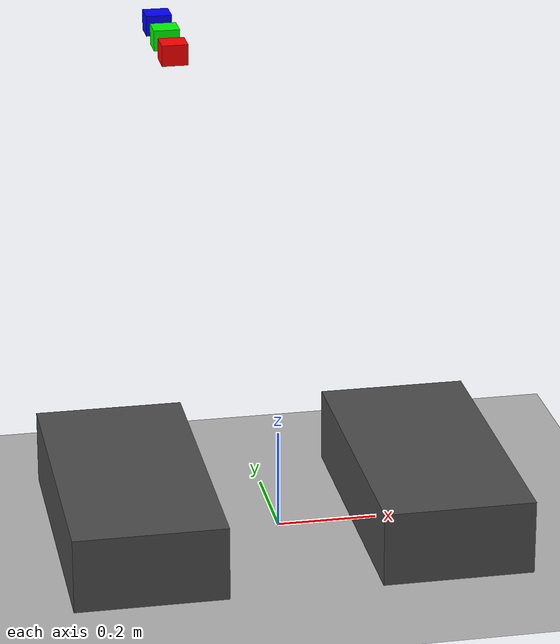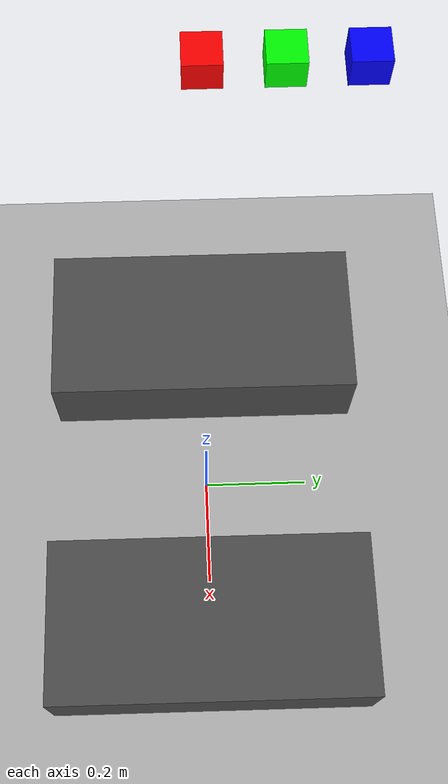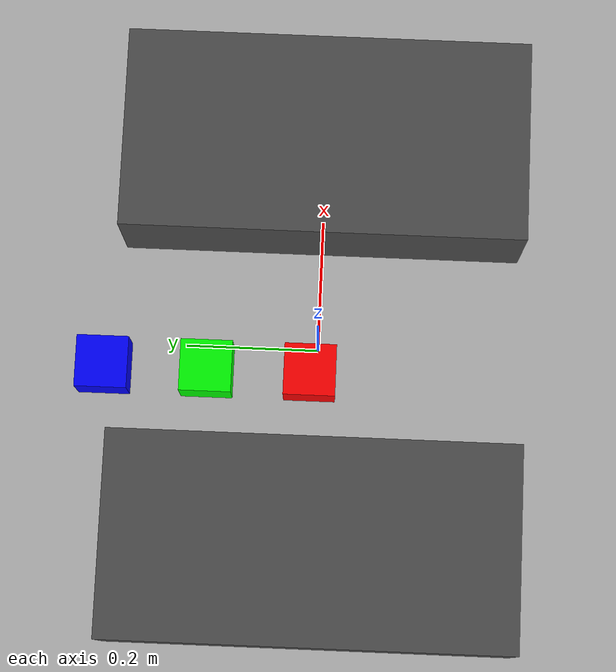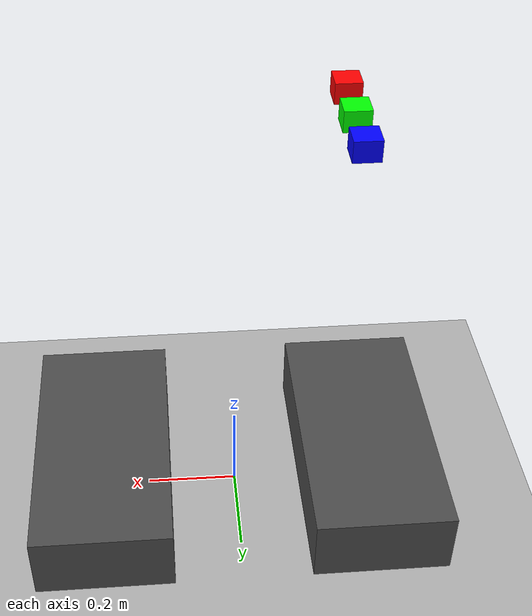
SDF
<sdf version='1.9'>
  <world name='empty_world'>
    <gravity>0 0 -9.8</gravity>
    <magnetic_field>6e-06 2.3e-05 -4.2e-05</magnetic_field>
    <atmosphere type='adiabatic'/>
    <physics type='ode'>
      <max_step_size>0.001</max_step_size>
      <real_time_factor>1</real_time_factor>
      <real_time_update_rate>1000</real_time_update_rate>
    </physics>
    <scene>
      <ambient>0.4 0.4 0.4 1</ambient>
      <background>0.7 0.7 0.7 1</background>
      <shadows>true</shadows>
    </scene>

    <!-- ===== الأرض ===== -->
    <model name='ground_plane'>
      <static>true</static>
      <link name='link'>
        <collision name='collision'>
          <geometry>
            <plane>
              <normal>0 0 1</normal>
              <size>1 1</size>
            </plane>
          </geometry>
          <surface>
            <friction>
              <ode/>
            </friction>
            <bounce/>
            <contact/>
          </surface>
        </collision>
        <visual name='visual'>
          <geometry>
            <plane>
              <normal>0 0 1</normal>
              <size>100 100</size>
            </plane>
          </geometry>
          <material>
                 <ambient>0.7 0.7 0.7 1</ambient>
                 <diffuse>0.7 0.7 0.7 1</diffuse>
          </material>
        </visual>
        <pose>0 0 0 0 -0 0</pose>
        <inertial>
          <pose>0 0 0 0 -0 0</pose>
          <mass>1</mass>
          <inertia>
            <ixx>1</ixx>
            <ixy>0</ixy>
            <ixz>0</ixz>
            <iyy>1</iyy>
            <iyz>0</iyz>
            <izz>1</izz>
          </inertia>
        </inertial>
        <enable_wind>false</enable_wind>
      </link>
      <pose>0 0 0 0 -0 0</pose>
      <self_collide>false</self_collide>
    </model>

    <!-- ===== الإضاءة ===== -->
    <light name='sun' type='directional'>
  <pose>0 0 10 0 0 0</pose>

  <!-- ❌ كان true -->
  <cast_shadows>false</cast_shadows>  <!-- 🔥 أهم سطر -->

  <direction>-0.3 0.1 -0.9</direction>

  <!-- softer light -->
  <diffuse>0.6 0.6 0.6 1</diffuse>
  <specular>0.1 0.1 0.1 1</specular>

  <attenuation>
    <range>1000</range>
    <constant>0.9</constant>
    <linear>0.01</linear>
    <quadratic>0.001</quadratic>
  </attenuation>
</light>

    <!-- ================= SUPPORT LEFT ================= -->
<model name="support_left">
  <static>true</static>

  <link name="link">

    <!-- نفس أبعاد الـ URDF -->
    <pose>0.3 0.0 0.075 0 0 1.57</pose>

    <!-- Inertia -->
    <inertial>
      <mass>5</mass>
      <inertia>
        <ixx>0.05</ixx>
        <iyy>0.05</iyy>
        <izz>0.05</izz>
        <ixy>0</ixy>
        <ixz>0</ixz>
        <iyz>0</iyz>
      </inertia>
    </inertial>

    <!-- Collision -->
    <collision name="collision">
      <geometry>
        <box>
          <size>0.6 0.3 0.15</size>
        </box>
      </geometry>
    </collision>

    <!-- Visual -->
    <visual name="visual">
      <geometry>
        <box>
          <size>0.6 0.3 0.15</size>
        </box>
      </geometry>
      <material>
        <ambient>0.3 0.3 0.3 1</ambient>
        <diffuse>0.3 0.3 0.3 1</diffuse>
      </material>
    </visual>

  </link>
</model>

<!-- ================= SUPPORT RIGHT ================= -->
<model name="support_right">
  <static>true</static>

  <link name="link">

    <!-- نفس الارتفاع + mirrored -->
    <pose>-0.3 0.0 0.075 0 0 1.57</pose>

    <inertial>
      <mass>5</mass>
      <inertia>
        <ixx>0.05</ixx>
        <iyy>0.05</iyy>
        <izz>0.05</izz>
        <ixy>0</ixy>
        <ixz>0</ixz>
        <iyz>0</iyz>
      </inertia>
    </inertial>

    <collision name="collision">
      <geometry>
        <box>
          <size>0.6 0.3 0.15</size>
        </box>
      </geometry>
    </collision>

    <visual name="visual">
      <geometry>
        <box>
          <size>0.6 0.3 0.15</size>
        </box>
      </geometry>
      <material>
        <ambient>0.3 0.3 0.3 1</ambient>
        <diffuse>0.3 0.3 0.3 1</diffuse>
      </material>
    </visual>

  </link>
</model>

    <!-- ================= RED BOX ================= -->
    <model name="red_box">
      <pose>-0.2 0 1 0 0 0</pose>
      <link name="link">
        <inertial>
          <mass>1.0</mass>
          <inertia>
            <ixx>0.001</ixx>
            <iyy>0.001</iyy>
            <izz>0.001</izz>
          </inertia>
        </inertial>

        <collision name="collision">
          <geometry>
            <box>
              <size>0.05 0.05 0.04</size>
            </box>
          </geometry>
        </collision>

        <visual name="visual">
          <geometry>
            <box>
              <size>0.05 0.05 0.04</size>
            </box>
          </geometry>
          <material>
            <ambient>1 0 0 1</ambient>
            <diffuse>1 0 0 1</diffuse>
          </material>
        </visual>
      </link>
    </model>

    <!-- ================= GREEN BOX ================= -->
    <model name="green_box">
      <pose>-0.2 0.1 1 0 0 0</pose>
      <link name="link">
        <collision name="collision">
          <geometry>
            <box>
              <size>0.05 0.05 0.04</size>
            </box>
          </geometry>
        </collision>

        <visual name="visual">
          <geometry>
            <box>
              <size>0.05 0.05 0.04</size>
            </box>
          </geometry>
          <material>
            <ambient>0 1 0 1</ambient>
            <diffuse>0 1 0 1</diffuse>
          </material>
        </visual>
      </link>
    </model>

    <!-- ================= BLUE BOX ================= -->
    <model name="blue_box">
      <pose>-0.2 0.2 1 0 0 0</pose>
      <link name="link">
        <collision name="collision">
          <geometry>
            <box>
              <size>0.05 0.05 0.04</size>
            </box>
          </geometry>
        </collision>

        <visual name="visual">
          <geometry>
            <box>
              <size>0.05 0.05 0.04</size>
            </box>
          </geometry>
          <material>
            <ambient>0 0 1 1</ambient>
            <diffuse>0 0 1 1</diffuse>
          </material>
        </visual>
      </link>
    </model>

  </world>

</sdf>
